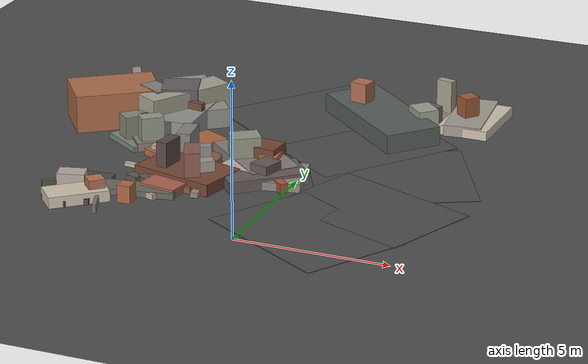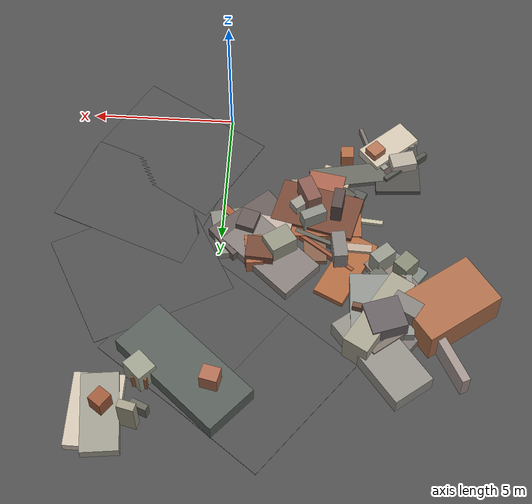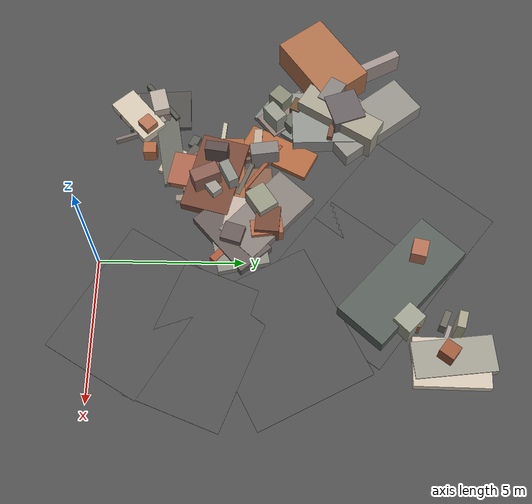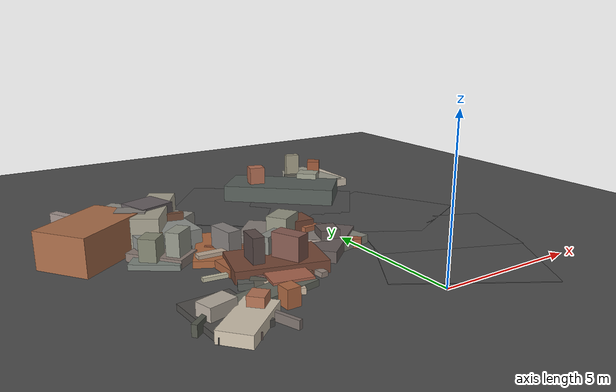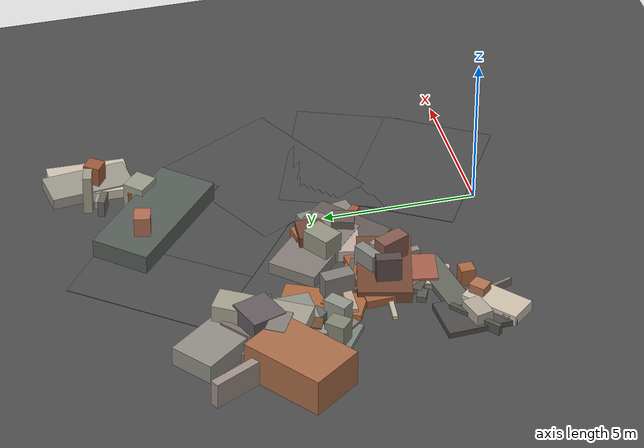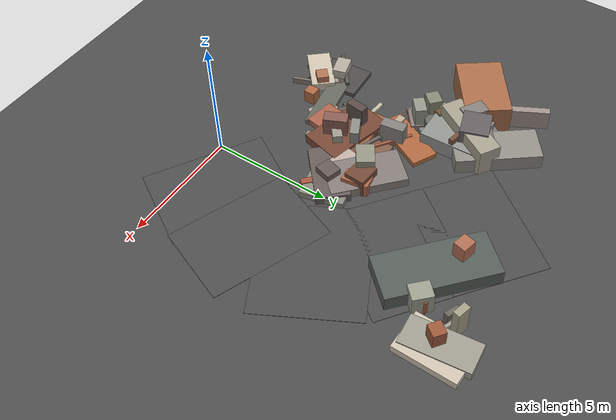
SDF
<sdf version="1.6">
 <world name="navitas_arena">
  <model name="ground_plane">
   <static>true</static>
   <link name="link">
    <collision name="collision">
     <geometry><plane><normal>0 0 1</normal><size>400 400</size></plane></geometry>
     <surface><friction><ode><mu>0.800</mu><mu2>0.800</mu2></ode></friction></surface>
    </collision>
    <visual name="visual">
     <cast_shadows>false</cast_shadows>
     <geometry><plane><normal>0 0 1</normal><size>400 400</size></plane></geometry>
     <material>
      <specular>0.04 0.04 0.04 1</specular>
      <script>
       <uri>file://media/materials/scripts/navitas_asphalt.material</uri>
       <name>Navitas/RealArenaAsphalt</name>
      </script>
     </material>
    </visual>
   </link>
  </model>
  <model name="road_orta_2_9">
   <static>true</static>
   <pose>1.823 1.333 0.040 0 0 1.031</pose>
   <link name="link">
    <collision name="col"><geometry><box><size>3.621 5.000 0.020</size></box></geometry></collision>
    <visual name="vis">
     <geometry><box><size>3.621 5.000 0.020</size></box></geometry>
     <material>
      <specular>0.04 0.04 0.04 1</specular>
      <script>
       <uri>file://media/materials/scripts/navitas_asphalt.material</uri>
       <name>Navitas/RealArenaAsphalt</name>
      </script>
     </material>
    </visual>
   </link>
  </model>
  <model name="road_orta_2_10">
   <static>true</static>
   <pose>2.977 3.667 0.040 0 0 1.199</pose>
   <link name="link">
    <collision name="col"><geometry><box><size>3.404 5.000 0.020</size></box></geometry></collision>
    <visual name="vis">
     <geometry><box><size>3.404 5.000 0.020</size></box></geometry>
     <material>
      <specular>0.04 0.04 0.04 1</specular>
      <script>
       <uri>file://media/materials/scripts/navitas_asphalt.material</uri>
       <name>Navitas/RealArenaAsphalt</name>
      </script>
     </material>
    </visual>
   </link>
  </model>
  <model name="road_orta_2_11">
   <static>true</static>
   <pose>2.650 6.321 0.040 0 0 2.054</pose>
   <link name="link">
    <collision name="col"><geometry><box><size>4.260 5.000 0.020</size></box></geometry></collision>
    <visual name="vis">
     <geometry><box><size>4.260 5.000 0.020</size></box></geometry>
     <material>
      <specular>0.04 0.04 0.04 1</specular>
      <script>
       <uri>file://media/materials/scripts/navitas_asphalt.material</uri>
       <name>Navitas/RealArenaAsphalt</name>
      </script>
     </material>
    </visual>
   </link>
  </model>
  <model name="road_orta_2_12">
   <static>true</static>
   <pose>0.633 8.732 0.040 0 0 2.500</pose>
   <link name="link">
    <collision name="col"><geometry><box><size>3.986 5.000 0.020</size></box></geometry></collision>
    <visual name="vis">
     <geometry><box><size>3.986 5.000 0.020</size></box></geometry>
     <material>
      <specular>0.04 0.04 0.04 1</specular>
      <script>
       <uri>file://media/materials/scripts/navitas_asphalt.material</uri>
       <name>Navitas/RealArenaAsphalt</name>
      </script>
     </material>
    </visual>
   </link>
  </model>
  <model name="road_orta_2_13">
   <static>true</static>
   <pose>-1.745 10.541 0.040 0 0 2.482</pose>
   <link name="link">
    <collision name="col"><geometry><box><size>3.789 5.000 0.020</size></box></geometry></collision>
    <visual name="vis">
     <geometry><box><size>3.789 5.000 0.020</size></box></geometry>
     <material>
      <specular>0.04 0.04 0.04 1</specular>
      <script>
       <uri>file://media/materials/scripts/navitas_asphalt.material</uri>
       <name>Navitas/RealArenaAsphalt</name>
      </script>
     </material>
    </visual>
   </link>
  </model>
  <model name="deb_orta_8">
   <static>true</static>
   <pose>-3.988 2.441 0.000 0 0 0</pose>
   <link name="link">
    <collision name="col_0">
     <pose>-0.166 0.179 0.083 0.000 0.000 2.644</pose>
     <geometry><box><size>0.406 0.339 0.167</size></box></geometry>
    </collision>
    <visual name="vis_0">
     <pose>-0.166 0.179 0.083 0.000 0.000 2.644</pose>
     <geometry><box><size>0.406 0.339 0.167</size></box></geometry>
     <material>
      <ambient>0.49 0.50 0.47 1</ambient>
      <diffuse>0.53 0.54 0.50 1</diffuse>
      <specular>0.05 0.05 0.045 1</specular>
     </material>
    </visual>
    <collision name="col_1">
     <pose>-0.240 -0.927 0.284 0.000 0.000 1.607</pose>
     <geometry><box><size>0.463 0.430 0.568</size></box></geometry>
    </collision>
    <visual name="vis_1">
     <pose>-0.240 -0.927 0.284 0.000 0.000 1.607</pose>
     <geometry><box><size>0.463 0.430 0.568</size></box></geometry>
     <material>
      <ambient>0.63 0.38 0.24 1</ambient>
      <diffuse>0.68 0.41 0.26 1</diffuse>
      <specular>0.05 0.05 0.045 1</specular>
     </material>
    </visual>
    <collision name="col_2">
     <pose>-0.118 0.623 0.110 0.000 0.000 2.162</pose>
     <geometry><box><size>1.603 0.123 0.219</size></box></geometry>
    </collision>
    <visual name="vis_2">
     <pose>-0.118 0.623 0.110 0.000 0.000 2.162</pose>
     <geometry><box><size>1.603 0.123 0.219</size></box></geometry>
     <material>
      <ambient>0.47 0.33 0.31 1</ambient>
      <diffuse>0.51 0.36 0.33 1</diffuse>
      <specular>0.05 0.05 0.045 1</specular>
     </material>
    </visual>
    <collision name="col_3">
     <pose>-0.724 0.634 0.104 0.000 0.000 1.157</pose>
     <geometry><box><size>0.305 0.448 0.208</size></box></geometry>
    </collision>
    <visual name="vis_3">
     <pose>-0.724 0.634 0.104 0.000 0.000 1.157</pose>
     <geometry><box><size>0.305 0.448 0.208</size></box></geometry>
     <material>
      <ambient>0.33 0.33 0.31 1</ambient>
      <diffuse>0.35 0.36 0.34 1</diffuse>
      <specular>0.05 0.05 0.045 1</specular>
     </material>
    </visual>
    <collision name="col_4">
     <pose>-0.274 0.683 0.106 0.000 0.000 2.522</pose>
     <geometry><box><size>0.493 0.453 0.212</size></box></geometry>
    </collision>
    <visual name="vis_4">
     <pose>-0.274 0.683 0.106 0.000 0.000 2.522</pose>
     <geometry><box><size>0.493 0.453 0.212</size></box></geometry>
     <material>
      <ambient>0.33 0.32 0.29 1</ambient>
      <diffuse>0.36 0.35 0.31 1</diffuse>
      <specular>0.05 0.05 0.045 1</specular>
     </material>
    </visual>
    <collision name="col_5">
     <pose>-0.348 -0.195 0.100 0.000 0.000 3.320</pose>
     <geometry><box><size>2.748 0.814 0.200</size></box></geometry>
    </collision>
    <visual name="vis_5">
     <pose>-0.348 -0.195 0.100 0.000 0.000 3.320</pose>
     <geometry><box><size>2.748 0.814 0.200</size></box></geometry>
     <material>
      <ambient>0.37 0.38 0.35 1</ambient>
      <diffuse>0.40 0.41 0.37 1</diffuse>
      <specular>0.05 0.05 0.045 1</specular>
     </material>
    </visual>
   </link>
  </model>
  <model name="deb_orta_38">
   <static>true</static>
   <pose>-5.814 6.107 0.000 0 0 0</pose>
   <link name="link">
    <collision name="col_0">
     <pose>-0.131 0.257 0.093 0.000 0.000 0.965</pose>
     <geometry><box><size>1.678 1.589 0.186</size></box></geometry>
    </collision>
    <visual name="vis_0">
     <pose>-0.131 0.257 0.093 0.000 0.000 0.965</pose>
     <geometry><box><size>1.678 1.589 0.186</size></box></geometry>
     <material>
      <ambient>0.45 0.48 0.46 1</ambient>
      <diffuse>0.49 0.52 0.49 1</diffuse>
      <specular>0.05 0.05 0.045 1</specular>
     </material>
    </visual>
    <collision name="col_1">
     <pose>0.313 -0.134 0.528 0.000 0.000 -0.868</pose>
     <geometry><box><size>0.468 0.754 1.056</size></box></geometry>
    </collision>
    <visual name="vis_1">
     <pose>0.313 -0.134 0.528 0.000 0.000 -0.868</pose>
     <geometry><box><size>0.468 0.754 1.056</size></box></geometry>
     <material>
      <ambient>0.53 0.54 0.50 1</ambient>
      <diffuse>0.58 0.59 0.54 1</diffuse>
      <specular>0.05 0.05 0.045 1</specular>
     </material>
    </visual>
    <collision name="col_2">
     <pose>-0.480 0.071 0.462 0.000 0.000 0.839</pose>
     <geometry><box><size>0.638 0.568 0.925</size></box></geometry>
    </collision>
    <visual name="vis_2">
     <pose>-0.480 0.071 0.462 0.000 0.000 0.839</pose>
     <geometry><box><size>0.638 0.568 0.925</size></box></geometry>
     <material>
      <ambient>0.49 0.49 0.42 1</ambient>
      <diffuse>0.52 0.53 0.45 1</diffuse>
      <specular>0.05 0.05 0.045 1</specular>
     </material>
    </visual>
    <collision name="col_3">
     <pose>0.415 0.473 0.328 0.000 0.000 0.718</pose>
     <geometry><box><size>0.460 0.496 0.657</size></box></geometry>
    </collision>
    <visual name="vis_3">
     <pose>0.415 0.473 0.328 0.000 0.000 0.718</pose>
     <geometry><box><size>0.460 0.496 0.657</size></box></geometry>
     <material>
      <ambient>0.37 0.39 0.35 1</ambient>
      <diffuse>0.40 0.42 0.38 1</diffuse>
      <specular>0.05 0.05 0.045 1</specular>
     </material>
    </visual>
    <collision name="col_4">
     <pose>-0.090 0.298 0.139 0.000 0.000 -0.895</pose>
     <geometry><box><size>1.948 0.996 0.277</size></box></geometry>
    </collision>
    <visual name="vis_4">
     <pose>-0.090 0.298 0.139 0.000 0.000 -0.895</pose>
     <geometry><box><size>1.948 0.996 0.277</size></box></geometry>
     <material>
      <ambient>0.50 0.45 0.42 1</ambient>
      <diffuse>0.54 0.48 0.45 1</diffuse>
      <specular>0.05 0.05 0.045 1</specular>
     </material>
    </visual>
   </link>
  </model>
  <model name="deb_orta_44">
   <static>true</static>
   <pose>-4.239 4.642 0.000 0 0 0</pose>
   <link name="link">
    <collision name="col_0">
     <pose>0.964 0.352 0.131 0.000 0.000 2.760</pose>
     <geometry><box><size>1.560 0.156 0.262</size></box></geometry>
    </collision>
    <visual name="vis_0">
     <pose>0.964 0.352 0.131 0.000 0.000 2.760</pose>
     <geometry><box><size>1.560 0.156 0.262</size></box></geometry>
     <material>
      <ambient>0.37 0.36 0.32 1</ambient>
      <diffuse>0.40 0.39 0.35 1</diffuse>
      <specular>0.05 0.05 0.045 1</specular>
     </material>
    </visual>
    <collision name="col_1">
     <pose>0.188 0.979 0.473 0.000 0.000 3.282</pose>
     <geometry><box><size>0.468 0.991 0.945</size></box></geometry>
    </collision>
    <visual name="vis_1">
     <pose>0.188 0.979 0.473 0.000 0.000 3.282</pose>
     <geometry><box><size>0.468 0.991 0.945</size></box></geometry>
     <material>
      <ambient>0.48 0.46 0.46 1</ambient>
      <diffuse>0.52 0.50 0.49 1</diffuse>
      <specular>0.05 0.05 0.045 1</specular>
     </material>
    </visual>
    <collision name="col_2">
     <pose>-0.461 -0.562 0.061 0.000 0.000 3.045</pose>
     <geometry><box><size>1.693 0.154 0.121</size></box></geometry>
    </collision>
    <visual name="vis_2">
     <pose>-0.461 -0.562 0.061 0.000 0.000 3.045</pose>
     <geometry><box><size>1.693 0.154 0.121</size></box></geometry>
     <material>
      <ambient>0.70 0.69 0.60 1</ambient>
      <diffuse>0.76 0.74 0.64 1</diffuse>
      <specular>0.05 0.05 0.045 1</specular>
     </material>
    </visual>
    <collision name="col_3">
     <pose>0.669 -0.200 0.130 0.000 0.000 3.185</pose>
     <geometry><box><size>2.450 0.948 0.261</size></box></geometry>
    </collision>
    <visual name="vis_3">
     <pose>0.669 -0.200 0.130 0.000 0.000 3.185</pose>
     <geometry><box><size>2.450 0.948 0.261</size></box></geometry>
     <material>
      <ambient>0.60 0.36 0.23 1</ambient>
      <diffuse>0.65 0.39 0.25 1</diffuse>
      <specular>0.05 0.05 0.045 1</specular>
     </material>
    </visual>
   </link>
  </model>
  <model name="deb_orta_52">
   <static>true</static>
   <pose>-3.961 5.617 0.000 0 0 0</pose>
   <link name="link">
    <collision name="col_0">
     <pose>-0.118 -0.140 0.108 0.000 0.000 1.724</pose>
     <geometry><box><size>1.891 0.129 0.217</size></box></geometry>
    </collision>
    <visual name="vis_0">
     <pose>-0.118 -0.140 0.108 0.000 0.000 1.724</pose>
     <geometry><box><size>1.891 0.129 0.217</size></box></geometry>
     <material>
      <ambient>0.44 0.34 0.28 1</ambient>
      <diffuse>0.48 0.37 0.30 1</diffuse>
      <specular>0.05 0.05 0.045 1</specular>
     </material>
    </visual>
    <collision name="col_1">
     <pose>-0.685 -0.251 0.172 0.000 0.000 -0.044</pose>
     <geometry><box><size>1.040 0.297 0.344</size></box></geometry>
    </collision>
    <visual name="vis_1">
     <pose>-0.685 -0.251 0.172 0.000 0.000 -0.044</pose>
     <geometry><box><size>1.040 0.297 0.344</size></box></geometry>
     <material>
      <ambient>0.68 0.61 0.54 1</ambient>
      <diffuse>0.74 0.66 0.58 1</diffuse>
      <specular>0.05 0.05 0.045 1</specular>
     </material>
    </visual>
    <collision name="col_2">
     <pose>-0.354 0.511 0.111 0.000 0.000 1.106</pose>
     <geometry><box><size>2.608 1.084 0.222</size></box></geometry>
    </collision>
    <visual name="vis_2">
     <pose>-0.354 0.511 0.111 0.000 0.000 1.106</pose>
     <geometry><box><size>2.608 1.084 0.222</size></box></geometry>
     <material>
      <ambient>0.63 0.38 0.23 1</ambient>
      <diffuse>0.68 0.41 0.25 1</diffuse>
      <specular>0.05 0.05 0.045 1</specular>
     </material>
    </visual>
    <collision name="col_3">
     <pose>0.324 -0.057 0.127 0.000 0.000 -0.624</pose>
     <geometry><box><size>2.230 0.129 0.254</size></box></geometry>
    </collision>
    <visual name="vis_3">
     <pose>0.324 -0.057 0.127 0.000 0.000 -0.624</pose>
     <geometry><box><size>2.230 0.129 0.254</size></box></geometry>
     <material>
      <ambient>0.58 0.33 0.22 1</ambient>
      <diffuse>0.62 0.35 0.24 1</diffuse>
      <specular>0.05 0.05 0.045 1</specular>
     </material>
    </visual>
   </link>
  </model>
  <model name="deb_orta_55">
   <static>true</static>
   <pose>-4.964 7.935 0.000 0 0 0</pose>
   <link name="link">
    <collision name="col_0">
     <pose>0.539 -1.078 0.101 0.000 0.000 0.499</pose>
     <geometry><box><size>0.466 0.174 0.202</size></box></geometry>
    </collision>
    <visual name="vis_0">
     <pose>0.539 -1.078 0.101 0.000 0.000 0.499</pose>
     <geometry><box><size>0.466 0.174 0.202</size></box></geometry>
     <material>
      <ambient>0.50 0.34 0.26 1</ambient>
      <diffuse>0.54 0.37 0.28 1</diffuse>
      <specular>0.05 0.05 0.045 1</specular>
     </material>
    </visual>
    <collision name="col_1">
     <pose>-1.128 -0.433 0.151 0.000 0.000 1.496</pose>
     <geometry><box><size>0.362 0.288 0.301</size></box></geometry>
    </collision>
    <visual name="vis_1">
     <pose>-1.128 -0.433 0.151 0.000 0.000 1.496</pose>
     <geometry><box><size>0.362 0.288 0.301</size></box></geometry>
     <material>
      <ambient>0.40 0.36 0.33 1</ambient>
      <diffuse>0.44 0.38 0.35 1</diffuse>
      <specular>0.05 0.05 0.045 1</specular>
     </material>
    </visual>
    <collision name="col_2">
     <pose>-0.342 1.059 0.158 0.000 0.000 -0.168</pose>
     <geometry><box><size>1.095 0.185 0.316</size></box></geometry>
    </collision>
    <visual name="vis_2">
     <pose>-0.342 1.059 0.158 0.000 0.000 -0.168</pose>
     <geometry><box><size>1.095 0.185 0.316</size></box></geometry>
     <material>
      <ambient>0.63 0.35 0.24 1</ambient>
      <diffuse>0.68 0.38 0.26 1</diffuse>
      <specular>0.05 0.05 0.045 1</specular>
     </material>
    </visual>
    <collision name="col_3">
     <pose>-0.833 0.272 0.164 0.000 0.000 -0.630</pose>
     <geometry><box><size>2.251 0.917 0.328</size></box></geometry>
    </collision>
    <visual name="vis_3">
     <pose>-0.833 0.272 0.164 0.000 0.000 -0.630</pose>
     <geometry><box><size>2.251 0.917 0.328</size></box></geometry>
     <material>
      <ambient>0.44 0.42 0.40 1</ambient>
      <diffuse>0.48 0.45 0.44 1</diffuse>
      <specular>0.05 0.05 0.045 1</specular>
     </material>
    </visual>
   </link>
  </model>
  <model name="deb_orta_146">
   <static>true</static>
   <pose>-1.520 5.432 0.000 0 0 0</pose>
   <link name="link">
    <collision name="col_0">
     <pose>-0.130 -0.416 0.193 0.000 0.000 1.384</pose>
     <geometry><box><size>1.436 1.327 0.386</size></box></geometry>
    </collision>
    <visual name="vis_0">
     <pose>-0.130 -0.416 0.193 0.000 0.000 1.384</pose>
     <geometry><box><size>1.436 1.327 0.386</size></box></geometry>
     <material>
      <ambient>0.69 0.63 0.59 1</ambient>
      <diffuse>0.75 0.68 0.64 1</diffuse>
      <specular>0.05 0.05 0.045 1</specular>
     </material>
    </visual>
    <collision name="col_1">
     <pose>-0.208 0.307 0.197 0.000 0.000 2.401</pose>
     <geometry><box><size>3.085 1.622 0.395</size></box></geometry>
    </collision>
    <visual name="vis_1">
     <pose>-0.208 0.307 0.197 0.000 0.000 2.401</pose>
     <geometry><box><size>3.085 1.622 0.395</size></box></geometry>
     <material>
      <ambient>0.48 0.45 0.44 1</ambient>
      <diffuse>0.52 0.49 0.47 1</diffuse>
      <specular>0.05 0.05 0.045 1</specular>
     </material>
    </visual>
    <collision name="col_2">
     <pose>-0.499 -0.138 0.081 0.000 0.000 2.013</pose>
     <geometry><box><size>2.096 0.253 0.162</size></box></geometry>
    </collision>
    <visual name="vis_2">
     <pose>-0.499 -0.138 0.081 0.000 0.000 2.013</pose>
     <geometry><box><size>2.096 0.253 0.162</size></box></geometry>
     <material>
      <ambient>0.55 0.51 0.48 1</ambient>
      <diffuse>0.60 0.55 0.52 1</diffuse>
      <specular>0.05 0.05 0.045 1</specular>
     </material>
    </visual>
    <collision name="col_3">
     <pose>-0.507 0.135 0.531 0.000 0.000 3.733</pose>
     <geometry><box><size>0.946 0.727 1.063</size></box></geometry>
    </collision>
    <visual name="vis_3">
     <pose>-0.507 0.135 0.531 0.000 0.000 3.733</pose>
     <geometry><box><size>0.946 0.727 1.063</size></box></geometry>
     <material>
      <ambient>0.53 0.53 0.47 1</ambient>
      <diffuse>0.58 0.58 0.51 1</diffuse>
      <specular>0.05 0.05 0.045 1</specular>
     </material>
    </visual>
    <collision name="col_4">
     <pose>0.138 0.356 0.380 0.000 0.000 3.072</pose>
     <geometry><box><size>0.942 0.844 0.761</size></box></geometry>
    </collision>
    <visual name="vis_4">
     <pose>0.138 0.356 0.380 0.000 0.000 3.072</pose>
     <geometry><box><size>0.942 0.844 0.761</size></box></geometry>
     <material>
      <ambient>0.41 0.26 0.19 1</ambient>
      <diffuse>0.45 0.28 0.21 1</diffuse>
      <specular>0.05 0.05 0.045 1</specular>
     </material>
    </visual>
    <collision name="col_5">
     <pose>0.360 0.320 0.284 0.000 0.000 1.700</pose>
     <geometry><box><size>1.101 0.582 0.567</size></box></geometry>
    </collision>
    <visual name="vis_5">
     <pose>0.360 0.320 0.284 0.000 0.000 1.700</pose>
     <geometry><box><size>1.101 0.582 0.567</size></box></geometry>
     <material>
      <ambient>0.63 0.38 0.26 1</ambient>
      <diffuse>0.68 0.41 0.28 1</diffuse>
      <specular>0.05 0.05 0.045 1</specular>
     </material>
    </visual>
   </link>
  </model>
  <model name="deb_orta_168">
   <static>true</static>
   <pose>-0.855 4.565 0.000 0 0 0</pose>
   <link name="link">
    <collision name="col_0">
     <pose>0.066 0.064 0.159 0.000 0.000 2.413</pose>
     <geometry><box><size>2.124 0.266 0.319</size></box></geometry>
    </collision>
    <visual name="vis_0">
     <pose>0.066 0.064 0.159 0.000 0.000 2.413</pose>
     <geometry><box><size>2.124 0.266 0.319</size></box></geometry>
     <material>
      <ambient>0.59 0.32 0.21 1</ambient>
      <diffuse>0.64 0.34 0.23 1</diffuse>
      <specular>0.05 0.05 0.045 1</specular>
     </material>
    </visual>
    <collision name="col_1">
     <pose>-0.038 0.035 0.334 0.000 0.000 2.854</pose>
     <geometry><box><size>0.645 0.730 0.667</size></box></geometry>
    </collision>
    <visual name="vis_1">
     <pose>-0.038 0.035 0.334 0.000 0.000 2.854</pose>
     <geometry><box><size>0.645 0.730 0.667</size></box></geometry>
     <material>
      <ambient>0.37 0.32 0.31 1</ambient>
      <diffuse>0.40 0.35 0.34 1</diffuse>
      <specular>0.05 0.05 0.045 1</specular>
     </material>
    </visual>
    <collision name="col_2">
     <pose>-0.132 -0.004 0.189 0.000 0.000 0.722</pose>
     <geometry><box><size>2.621 1.363 0.378</size></box></geometry>
    </collision>
    <visual name="vis_2">
     <pose>-0.132 -0.004 0.189 0.000 0.000 0.722</pose>
     <geometry><box><size>2.621 1.363 0.378</size></box></geometry>
     <material>
      <ambient>0.37 0.34 0.33 1</ambient>
      <diffuse>0.40 0.36 0.35 1</diffuse>
      <specular>0.05 0.05 0.045 1</specular>
     </material>
    </visual>
    <collision name="col_3">
     <pose>0.500 0.319 0.141 0.000 0.000 1.784</pose>
     <geometry><box><size>1.795 1.259 0.281</size></box></geometry>
    </collision>
    <visual name="vis_3">
     <pose>0.500 0.319 0.141 0.000 0.000 1.784</pose>
     <geometry><box><size>1.795 1.259 0.281</size></box></geometry>
     <material>
      <ambient>0.49 0.49 0.45 1</ambient>
      <diffuse>0.53 0.53 0.49 1</diffuse>
      <specular>0.05 0.05 0.045 1</specular>
     </material>
    </visual>
   </link>
  </model>
  <model name="deb_orta_180">
   <static>true</static>
   <pose>-5.669 1.529 0.000 0 0 0</pose>
   <link name="link">
    <collision name="col_0">
     <pose>-0.534 0.207 0.295 0.000 0.000 3.408</pose>
     <geometry><box><size>0.876 0.580 0.590</size></box></geometry>
    </collision>
    <visual name="vis_0">
     <pose>-0.534 0.207 0.295 0.000 0.000 3.408</pose>
     <geometry><box><size>0.876 0.580 0.590</size></box></geometry>
     <material>
      <ambient>0.66 0.62 0.58 1</ambient>
      <diffuse>0.71 0.67 0.62 1</diffuse>
      <specular>0.05 0.05 0.045 1</specular>
     </material>
    </visual>
    <collision name="col_1">
     <pose>0.154 0.273 0.125 0.000 0.000 2.292</pose>
     <geometry><box><size>0.356 0.244 0.250</size></box></geometry>
    </collision>
    <visual name="vis_1">
     <pose>0.154 0.273 0.125 0.000 0.000 2.292</pose>
     <geometry><box><size>0.356 0.244 0.250</size></box></geometry>
     <material>
      <ambient>0.55 0.55 0.52 1</ambient>
      <diffuse>0.59 0.59 0.56 1</diffuse>
      <specular>0.05 0.05 0.045 1</specular>
     </material>
    </visual>
    <collision name="col_2">
     <pose>-0.323 0.232 0.097 0.000 0.000 1.637</pose>
     <geometry><box><size>2.221 1.563 0.195</size></box></geometry>
    </collision>
    <visual name="vis_2">
     <pose>-0.323 0.232 0.097 0.000 0.000 1.637</pose>
     <geometry><box><size>2.221 1.563 0.195</size></box></geometry>
     <material>
      <ambient>0.29 0.28 0.27 1</ambient>
      <diffuse>0.31 0.30 0.29 1</diffuse>
      <specular>0.05 0.05 0.045 1</specular>
     </material>
    </visual>
    <collision name="col_3">
     <pose>-0.095 -0.322 0.102 0.000 0.000 1.487</pose>
     <geometry><box><size>1.866 0.245 0.204</size></box></geometry>
    </collision>
    <visual name="vis_3">
     <pose>-0.095 -0.322 0.102 0.000 0.000 1.487</pose>
     <geometry><box><size>1.866 0.245 0.204</size></box></geometry>
     <material>
      <ambient>0.31 0.26 0.25 1</ambient>
      <diffuse>0.34 0.28 0.27 1</diffuse>
      <specular>0.05 0.05 0.045 1</specular>
     </material>
    </visual>
    <collision name="col_4">
     <pose>-0.042 -0.556 0.182 0.000 0.000 3.862</pose>
     <geometry><box><size>1.938 0.982 0.364</size></box></geometry>
    </collision>
    <visual name="vis_4">
     <pose>-0.042 -0.556 0.182 0.000 0.000 3.862</pose>
     <geometry><box><size>1.938 0.982 0.364</size></box></geometry>
     <material>
      <ambient>0.75 0.71 0.63 1</ambient>
      <diffuse>0.81 0.76 0.68 1</diffuse>
      <specular>0.05 0.05 0.045 1</specular>
     </material>
    </visual>
   </link>
  </model>
  <model name="deb_orta_202">
   <static>true</static>
   <pose>-3.505 3.345 0.000 0 0 0</pose>
   <link name="link">
    <collision name="col_0">
     <pose>-0.442 0.608 0.605 0.000 0.000 1.431</pose>
     <geometry><box><size>0.797 0.369 1.210</size></box></geometry>
    </collision>
    <visual name="vis_0">
     <pose>-0.442 0.608 0.605 0.000 0.000 1.431</pose>
     <geometry><box><size>0.797 0.369 1.210</size></box></geometry>
     <material>
      <ambient>0.33 0.27 0.26 1</ambient>
      <diffuse>0.35 0.29 0.28 1</diffuse>
      <specular>0.05 0.05 0.045 1</specular>
     </material>
    </visual>
    <collision name="col_1">
     <pose>0.247 0.549 0.197 0.000 0.000 -0.248</pose>
     <geometry><box><size>2.882 1.712 0.395</size></box></geometry>
    </collision>
    <visual name="vis_1">
     <pose>0.247 0.549 0.197 0.000 0.000 -0.248</pose>
     <geometry><box><size>2.882 1.712 0.395</size></box></geometry>
     <material>
      <ambient>0.42 0.26 0.20 1</ambient>
      <diffuse>0.46 0.28 0.21 1</diffuse>
      <specular>0.05 0.05 0.045 1</specular>
     </material>
    </visual>
    <collision name="col_2">
     <pose>-0.051 -0.171 0.093 0.000 0.000 1.199</pose>
     <geometry><box><size>2.469 1.084 0.186</size></box></geometry>
    </collision>
    <visual name="vis_2">
     <pose>-0.051 -0.171 0.093 0.000 0.000 1.199</pose>
     <geometry><box><size>2.469 1.084 0.186</size></box></geometry>
     <material>
      <ambient>0.73 0.66 0.57 1</ambient>
      <diffuse>0.79 0.71 0.62 1</diffuse>
      <specular>0.05 0.05 0.045 1</specular>
     </material>
    </visual>
    <collision name="col_3">
     <pose>-0.004 -0.340 0.068 0.000 0.000 0.509</pose>
     <geometry><box><size>0.317 0.207 0.136</size></box></geometry>
    </collision>
    <visual name="vis_3">
     <pose>-0.004 -0.340 0.068 0.000 0.000 0.509</pose>
     <geometry><box><size>0.317 0.207 0.136</size></box></geometry>
     <material>
      <ambient>0.53 0.49 0.47 1</ambient>
      <diffuse>0.57 0.53 0.50 1</diffuse>
      <specular>0.05 0.05 0.045 1</specular>
     </material>
    </visual>
    <collision name="col_4">
     <pose>0.551 0.238 0.589 0.000 0.000 2.000</pose>
     <geometry><box><size>0.972 0.498 1.178</size></box></geometry>
    </collision>
    <visual name="vis_4">
     <pose>0.551 0.238 0.589 0.000 0.000 2.000</pose>
     <geometry><box><size>0.972 0.498 1.178</size></box></geometry>
     <material>
      <ambient>0.49 0.33 0.30 1</ambient>
      <diffuse>0.53 0.36 0.32 1</diffuse>
      <specular>0.05 0.05 0.045 1</specular>
     </material>
    </visual>
    <collision name="col_5">
     <pose>-0.387 0.369 0.117 0.000 0.000 0.876</pose>
     <geometry><box><size>0.333 0.262 0.233</size></box></geometry>
    </collision>
    <visual name="vis_5">
     <pose>-0.387 0.369 0.117 0.000 0.000 0.876</pose>
     <geometry><box><size>0.333 0.262 0.233</size></box></geometry>
     <material>
      <ambient>0.65 0.40 0.29 1</ambient>
      <diffuse>0.70 0.43 0.32 1</diffuse>
      <specular>0.05 0.05 0.045 1</specular>
     </material>
    </visual>
    <collision name="col_6">
     <pose>0.068 -0.212 0.138 0.000 0.000 1.390</pose>
     <geometry><box><size>1.713 1.265 0.275</size></box></geometry>
    </collision>
    <visual name="vis_6">
     <pose>0.068 -0.212 0.138 0.000 0.000 1.390</pose>
     <geometry><box><size>1.713 1.265 0.275</size></box></geometry>
     <material>
      <ambient>0.61 0.36 0.28 1</ambient>
      <diffuse>0.66 0.39 0.30 1</diffuse>
      <specular>0.05 0.05 0.045 1</specular>
     </material>
    </visual>
   </link>
  </model>
  <model name="deb_orta_232">
   <static>true</static>
   <pose>3.445 11.277 0.000 0 0 0</pose>
   <link name="link">
    <collision name="col_0">
     <pose>-0.206 0.260 0.143 0.000 0.000 2.784</pose>
     <geometry><box><size>2.119 0.138 0.286</size></box></geometry>
    </collision>
    <visual name="vis_0">
     <pose>-0.206 0.260 0.143 0.000 0.000 2.784</pose>
     <geometry><box><size>2.119 0.138 0.286</size></box></geometry>
     <material>
      <ambient>0.59 0.55 0.53 1</ambient>
      <diffuse>0.64 0.59 0.57 1</diffuse>
      <specular>0.05 0.05 0.045 1</specular>
     </material>
    </visual>
    <collision name="col_1">
     <pose>0.070 0.611 0.160 0.000 0.000 1.553</pose>
     <geometry><box><size>2.560 1.670 0.321</size></box></geometry>
    </collision>
    <visual name="vis_1">
     <pose>0.070 0.611 0.160 0.000 0.000 1.553</pose>
     <geometry><box><size>2.560 1.670 0.321</size></box></geometry>
     <material>
      <ambient>0.75 0.70 0.64 1</ambient>
      <diffuse>0.81 0.76 0.69 1</diffuse>
      <specular>0.05 0.05 0.045 1</specular>
     </material>
    </visual>
    <collision name="col_2">
     <pose>-0.113 0.690 0.186 0.000 0.000 1.682</pose>
     <geometry><box><size>2.734 1.247 0.371</size></box></geometry>
    </collision>
    <visual name="vis_2">
     <pose>-0.113 0.690 0.186 0.000 0.000 1.682</pose>
     <geometry><box><size>2.734 1.247 0.371</size></box></geometry>
     <material>
      <ambient>0.58 0.56 0.52 1</ambient>
      <diffuse>0.62 0.61 0.56 1</diffuse>
      <specular>0.05 0.05 0.045 1</specular>
     </material>
    </visual>
    <collision name="col_3">
     <pose>-0.069 -0.401 0.070 0.000 0.000 2.751</pose>
     <geometry><box><size>0.487 0.201 0.141</size></box></geometry>
    </collision>
    <visual name="vis_3">
     <pose>-0.069 -0.401 0.070 0.000 0.000 2.751</pose>
     <geometry><box><size>0.487 0.201 0.141</size></box></geometry>
     <material>
      <ambient>0.44 0.31 0.21 1</ambient>
      <diffuse>0.47 0.33 0.23 1</diffuse>
      <specular>0.05 0.05 0.045 1</specular>
     </material>
    </visual>
    <collision name="col_4">
     <pose>-0.150 0.472 0.516 0.000 0.000 2.505</pose>
     <geometry><box><size>0.510 0.544 1.032</size></box></geometry>
    </collision>
    <visual name="vis_4">
     <pose>-0.150 0.472 0.516 0.000 0.000 2.505</pose>
     <geometry><box><size>0.510 0.544 1.032</size></box></geometry>
     <material>
      <ambient>0.57 0.32 0.22 1</ambient>
      <diffuse>0.61 0.35 0.23 1</diffuse>
      <specular>0.05 0.05 0.045 1</specular>
     </material>
    </visual>
   </link>
  </model>
  <model name="deb_orta_281">
   <static>true</static>
   <pose>-2.645 4.289 0.000 0 0 0</pose>
   <link name="link">
    <collision name="col_0">
     <pose>-0.019 -0.463 0.372 0.000 0.000 0.676</pose>
     <geometry><box><size>0.632 0.394 0.744</size></box></geometry>
    </collision>
    <visual name="vis_0">
     <pose>-0.019 -0.463 0.372 0.000 0.000 0.676</pose>
     <geometry><box><size>0.632 0.394 0.744</size></box></geometry>
     <material>
      <ambient>0.57 0.55 0.52 1</ambient>
      <diffuse>0.62 0.60 0.56 1</diffuse>
      <specular>0.05 0.05 0.045 1</specular>
     </material>
    </visual>
    <collision name="col_1">
     <pose>-0.515 0.033 0.089 0.000 0.000 1.642</pose>
     <geometry><box><size>3.170 0.769 0.178</size></box></geometry>
    </collision>
    <visual name="vis_1">
     <pose>-0.515 0.033 0.089 0.000 0.000 1.642</pose>
     <geometry><box><size>3.170 0.769 0.178</size></box></geometry>
     <material>
      <ambient>0.48 0.34 0.27 1</ambient>
      <diffuse>0.52 0.37 0.29 1</diffuse>
      <specular>0.05 0.05 0.045 1</specular>
     </material>
    </visual>
    <collision name="col_2">
     <pose>-0.480 0.104 0.479 0.000 0.000 0.468</pose>
     <geometry><box><size>0.845 0.364 0.958</size></box></geometry>
    </collision>
    <visual name="vis_2">
     <pose>-0.480 0.104 0.479 0.000 0.000 0.468</pose>
     <geometry><box><size>0.845 0.364 0.958</size></box></geometry>
     <material>
      <ambient>0.50 0.51 0.48 1</ambient>
      <diffuse>0.54 0.55 0.52 1</diffuse>
      <specular>0.05 0.05 0.045 1</specular>
     </material>
    </visual>
    <collision name="col_3">
     <pose>0.122 -0.651 0.084 0.000 0.000 1.672</pose>
     <geometry><box><size>2.256 0.240 0.167</size></box></geometry>
    </collision>
    <visual name="vis_3">
     <pose>0.122 -0.651 0.084 0.000 0.000 1.672</pose>
     <geometry><box><size>2.256 0.240 0.167</size></box></geometry>
     <material>
      <ambient>0.55 0.49 0.45 1</ambient>
      <diffuse>0.59 0.53 0.49 1</diffuse>
      <specular>0.05 0.05 0.045 1</specular>
     </material>
    </visual>
    <collision name="col_4">
     <pose>-0.140 0.599 0.114 0.000 0.000 2.795</pose>
     <geometry><box><size>0.336 0.171 0.229</size></box></geometry>
    </collision>
    <visual name="vis_4">
     <pose>-0.140 0.599 0.114 0.000 0.000 2.795</pose>
     <geometry><box><size>0.336 0.171 0.229</size></box></geometry>
     <material>
      <ambient>0.66 0.41 0.28 1</ambient>
      <diffuse>0.71 0.44 0.30 1</diffuse>
      <specular>0.05 0.05 0.045 1</specular>
     </material>
    </visual>
   </link>
  </model>
  <model name="deb_orta_292">
   <static>true</static>
   <pose>-5.767 1.263 0.000 0 0 0</pose>
   <link name="link">
    <collision name="col_0">
     <pose>-0.592 -0.451 0.145 0.000 0.000 1.856</pose>
     <geometry><box><size>0.411 0.448 0.290</size></box></geometry>
    </collision>
    <visual name="vis_0">
     <pose>-0.592 -0.451 0.145 0.000 0.000 1.856</pose>
     <geometry><box><size>0.411 0.448 0.290</size></box></geometry>
     <material>
      <ambient>0.55 0.56 0.50 1</ambient>
      <diffuse>0.60 0.60 0.54 1</diffuse>
      <specular>0.05 0.05 0.045 1</specular>
     </material>
    </visual>
    <collision name="col_1">
     <pose>-0.075 -0.636 0.170 0.000 0.000 1.717</pose>
     <geometry><box><size>0.200 0.296 0.339</size></box></geometry>
    </collision>
    <visual name="vis_1">
     <pose>-0.075 -0.636 0.170 0.000 0.000 1.717</pose>
     <geometry><box><size>0.200 0.296 0.339</size></box></geometry>
     <material>
      <ambient>0.54 0.52 0.49 1</ambient>
      <diffuse>0.58 0.56 0.53 1</diffuse>
      <specular>0.05 0.05 0.045 1</specular>
     </material>
    </visual>
    <collision name="col_2">
     <pose>-0.538 0.572 0.169 0.000 0.000 0.688</pose>
     <geometry><box><size>1.853 0.163 0.339</size></box></geometry>
    </collision>
    <visual name="vis_2">
     <pose>-0.538 0.572 0.169 0.000 0.000 0.688</pose>
     <geometry><box><size>1.853 0.163 0.339</size></box></geometry>
     <material>
      <ambient>0.31 0.31 0.28 1</ambient>
      <diffuse>0.33 0.34 0.30 1</diffuse>
      <specular>0.05 0.05 0.045 1</specular>
     </material>
    </visual>
    <collision name="col_3">
     <pose>0.540 0.113 0.329 0.000 0.000 -0.804</pose>
     <geometry><box><size>0.482 0.521 0.658</size></box></geometry>
    </collision>
    <visual name="vis_3">
     <pose>0.540 0.113 0.329 0.000 0.000 -0.804</pose>
     <geometry><box><size>0.482 0.521 0.658</size></box></geometry>
     <material>
      <ambient>0.65 0.42 0.30 1</ambient>
      <diffuse>0.70 0.45 0.33 1</diffuse>
      <specular>0.05 0.05 0.045 1</specular>
     </material>
    </visual>
    <collision name="col_4">
     <pose>0.776 -0.240 0.130 0.000 0.000 1.916</pose>
     <geometry><box><size>1.713 0.121 0.260</size></box></geometry>
    </collision>
    <visual name="vis_4">
     <pose>0.776 -0.240 0.130 0.000 0.000 1.916</pose>
     <geometry><box><size>1.713 0.121 0.260</size></box></geometry>
     <material>
      <ambient>0.45 0.42 0.39 1</ambient>
      <diffuse>0.49 0.45 0.43 1</diffuse>
      <specular>0.05 0.05 0.045 1</specular>
     </material>
    </visual>
   </link>
  </model>
  <model name="chic_orta_4">
   <static>true</static>
   <pose>-6.260 8.562 0.000 0 0 0</pose>
   <link name="link">
    <collision name="col_0">
     <pose>0.675 -0.101 0.646 0.000 0.000 1.904</pose>
     <geometry><box><size>1.147 1.206 1.293</size></box></geometry>
    </collision>
    <visual name="vis_0">
     <pose>0.675 -0.101 0.646 0.000 0.000 1.904</pose>
     <geometry><box><size>1.147 1.206 1.293</size></box></geometry>
     <material>
      <ambient>0.37 0.34 0.35 1</ambient>
      <diffuse>0.40 0.37 0.38 1</diffuse>
      <specular>0.05 0.05 0.045 1</specular>
     </material>
    </visual>
    <collision name="col_1">
     <pose>0.274 -1.789 0.369 0.000 0.000 2.718</pose>
     <geometry><box><size>0.525 0.366 0.738</size></box></geometry>
    </collision>
    <visual name="vis_1">
     <pose>0.274 -1.789 0.369 0.000 0.000 2.718</pose>
     <geometry><box><size>0.525 0.366 0.738</size></box></geometry>
     <material>
      <ambient>0.40 0.28 0.18 1</ambient>
      <diffuse>0.43 0.31 0.20 1</diffuse>
      <specular>0.05 0.05 0.045 1</specular>
     </material>
    </visual>
    <collision name="col_2">
     <pose>-1.399 -0.862 0.625 0.000 0.000 3.778</pose>
     <geometry><box><size>2.852 1.885 1.249</size></box></geometry>
    </collision>
    <visual name="vis_2">
     <pose>-1.399 -0.862 0.625 0.000 0.000 3.778</pose>
     <geometry><box><size>2.852 1.885 1.249</size></box></geometry>
     <material>
      <ambient>0.62 0.40 0.27 1</ambient>
      <diffuse>0.67 0.43 0.29 1</diffuse>
      <specular>0.05 0.05 0.045 1</specular>
     </material>
    </visual>
    <collision name="col_3">
     <pose>0.940 -0.470 0.469 0.000 0.000 2.936</pose>
     <geometry><box><size>1.601 0.188 0.939</size></box></geometry>
    </collision>
    <visual name="vis_3">
     <pose>0.940 -0.470 0.469 0.000 0.000 2.936</pose>
     <geometry><box><size>1.601 0.188 0.939</size></box></geometry>
     <material>
      <ambient>0.43 0.29 0.22 1</ambient>
      <diffuse>0.46 0.31 0.23 1</diffuse>
      <specular>0.05 0.05 0.045 1</specular>
     </material>
    </visual>
    <collision name="col_4">
     <pose>0.754 -0.826 0.343 0.000 0.000 3.179</pose>
     <geometry><box><size>2.079 2.284 0.685</size></box></geometry>
    </collision>
    <visual name="vis_4">
     <pose>0.754 -0.826 0.343 0.000 0.000 3.179</pose>
     <geometry><box><size>2.079 2.284 0.685</size></box></geometry>
     <material>
      <ambient>0.52 0.53 0.51 1</ambient>
      <diffuse>0.56 0.57 0.55 1</diffuse>
      <specular>0.05 0.05 0.045 1</specular>
     </material>
    </visual>
    <collision name="col_5">
     <pose>0.734 0.890 0.325 0.000 0.000 2.233</pose>
     <geometry><box><size>3.453 1.492 0.651</size></box></geometry>
    </collision>
    <visual name="vis_5">
     <pose>0.734 0.890 0.325 0.000 0.000 2.233</pose>
     <geometry><box><size>3.453 1.492 0.651</size></box></geometry>
     <material>
      <ambient>0.52 0.52 0.49 1</ambient>
      <diffuse>0.57 0.56 0.53 1</diffuse>
      <specular>0.05 0.05 0.045 1</specular>
     </material>
    </visual>
    <collision name="col_6">
     <pose>-0.006 -0.543 0.633 0.000 0.000 4.186</pose>
     <geometry><box><size>0.622 1.002 1.266</size></box></geometry>
    </collision>
    <visual name="vis_6">
     <pose>-0.006 -0.543 0.633 0.000 0.000 4.186</pose>
     <geometry><box><size>0.622 1.002 1.266</size></box></geometry>
     <material>
      <ambient>0.48 0.47 0.44 1</ambient>
      <diffuse>0.52 0.50 0.48 1</diffuse>
      <specular>0.05 0.05 0.045 1</specular>
     </material>
    </visual>
    <collision name="col_7">
     <pose>0.539 0.565 0.363 0.000 0.000 3.802</pose>
     <geometry><box><size>1.302 0.218 0.725</size></box></geometry>
    </collision>
    <visual name="vis_7">
     <pose>0.539 0.565 0.363 0.000 0.000 3.802</pose>
     <geometry><box><size>1.302 0.218 0.725</size></box></geometry>
     <material>
      <ambient>0.45 0.41 0.39 1</ambient>
      <diffuse>0.49 0.45 0.42 1</diffuse>
      <specular>0.05 0.05 0.045 1</specular>
     </material>
    </visual>
    <collision name="col_8">
     <pose>0.850 -0.249 0.608 0.000 0.000 4.172</pose>
     <geometry><box><size>3.009 0.906 1.216</size></box></geometry>
    </collision>
    <visual name="vis_8">
     <pose>0.850 -0.249 0.608 0.000 0.000 4.172</pose>
     <geometry><box><size>3.009 0.906 1.216</size></box></geometry>
     <material>
      <ambient>0.60 0.58 0.52 1</ambient>
      <diffuse>0.65 0.63 0.56 1</diffuse>
      <specular>0.05 0.05 0.045 1</specular>
     </material>
    </visual>
    <collision name="col_9">
     <pose>-1.432 0.948 0.438 0.000 0.000 2.055</pose>
     <geometry><box><size>2.202 0.292 0.876</size></box></geometry>
    </collision>
    <visual name="vis_9">
     <pose>-1.432 0.948 0.438 0.000 0.000 2.055</pose>
     <geometry><box><size>2.202 0.292 0.876</size></box></geometry>
     <material>
      <ambient>0.59 0.53 0.51 1</ambient>
      <diffuse>0.63 0.57 0.55 1</diffuse>
      <specular>0.05 0.05 0.045 1</specular>
     </material>
    </visual>
   </link>
  </model>
  <model name="chic_orta_5">
   <static>true</static>
   <pose>1.336 11.537 0.000 0 0 0</pose>
   <link name="link">
    <collision name="col_0">
     <pose>0.857 -1.033 0.450 0.000 0.000 -0.776</pose>
     <geometry><box><size>0.816 0.705 0.901</size></box></geometry>
    </collision>
    <visual name="vis_0">
     <pose>0.857 -1.033 0.450 0.000 0.000 -0.776</pose>
     <geometry><box><size>0.816 0.705 0.901</size></box></geometry>
     <material>
      <ambient>0.56 0.57 0.51 1</ambient>
      <diffuse>0.61 0.62 0.55 1</diffuse>
      <specular>0.05 0.05 0.045 1</specular>
     </material>
    </visual>
    <collision name="col_1">
     <pose>0.767 0.194 0.277 0.000 0.000 -0.407</pose>
     <geometry><box><size>0.596 0.219 0.553</size></box></geometry>
    </collision>
    <visual name="vis_1">
     <pose>0.767 0.194 0.277 0.000 0.000 -0.407</pose>
     <geometry><box><size>0.596 0.219 0.553</size></box></geometry>
     <material>
      <ambient>0.38 0.37 0.34 1</ambient>
      <diffuse>0.41 0.40 0.36 1</diffuse>
      <specular>0.05 0.05 0.045 1</specular>
     </material>
    </visual>
    <collision name="col_2">
     <pose>1.051 0.613 0.669 0.000 0.000 1.325</pose>
     <geometry><box><size>0.283 0.571 1.339</size></box></geometry>
    </collision>
    <visual name="vis_2">
     <pose>1.051 0.613 0.669 0.000 0.000 1.325</pose>
     <geometry><box><size>0.283 0.571 1.339</size></box></geometry>
     <material>
      <ambient>0.60 0.58 0.49 1</ambient>
      <diffuse>0.64 0.62 0.53 1</diffuse>
      <specular>0.05 0.05 0.045 1</specular>
     </material>
    </visual>
    <collision name="col_3">
     <pose>-1.450 -0.634 0.675 0.000 0.000 1.342</pose>
     <geometry><box><size>0.520 0.597 1.349</size></box></geometry>
    </collision>
    <visual name="vis_3">
     <pose>-1.450 -0.634 0.675 0.000 0.000 1.342</pose>
     <geometry><box><size>0.520 0.597 1.349</size></box></geometry>
     <material>
      <ambient>0.64 0.40 0.31 1</ambient>
      <diffuse>0.69 0.43 0.33 1</diffuse>
      <specular>0.05 0.05 0.045 1</specular>
     </material>
    </visual>
    <collision name="col_4">
     <pose>-0.541 -1.198 0.339 0.000 0.000 -0.727</pose>
     <geometry><box><size>4.421 1.922 0.677</size></box></geometry>
    </collision>
    <visual name="vis_4">
     <pose>-0.541 -1.198 0.339 0.000 0.000 -0.727</pose>
     <geometry><box><size>4.421 1.922 0.677</size></box></geometry>
     <material>
      <ambient>0.32 0.35 0.32 1</ambient>
      <diffuse>0.34 0.37 0.35 1</diffuse>
      <specular>0.05 0.05 0.045 1</specular>
     </material>
    </visual>
    <collision name="col_5">
     <pose>-1.581 -0.481 0.295 0.000 0.000 1.291</pose>
     <geometry><box><size>0.290 0.473 0.590</size></box></geometry>
    </collision>
    <visual name="vis_5">
     <pose>-1.581 -0.481 0.295 0.000 0.000 1.291</pose>
     <geometry><box><size>0.290 0.473 0.590</size></box></geometry>
     <material>
      <ambient>0.68 0.65 0.57 1</ambient>
      <diffuse>0.74 0.70 0.62 1</diffuse>
      <specular>0.05 0.05 0.045 1</specular>
     </material>
    </visual>
    <collision name="col_6">
     <pose>0.827 -0.811 0.318 0.000 0.000 1.403</pose>
     <geometry><box><size>0.353 0.507 0.637</size></box></geometry>
    </collision>
    <visual name="vis_6">
     <pose>0.827 -0.811 0.318 0.000 0.000 1.403</pose>
     <geometry><box><size>0.353 0.507 0.637</size></box></geometry>
     <material>
      <ambient>0.57 0.35 0.21 1</ambient>
      <diffuse>0.61 0.38 0.23 1</diffuse>
      <specular>0.05 0.05 0.045 1</specular>
     </material>
    </visual>
   </link>
  </model>
 </world>
</sdf>
